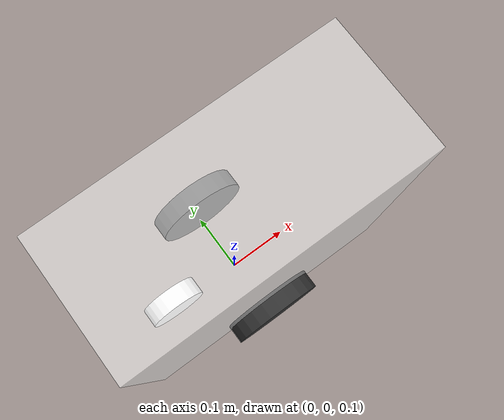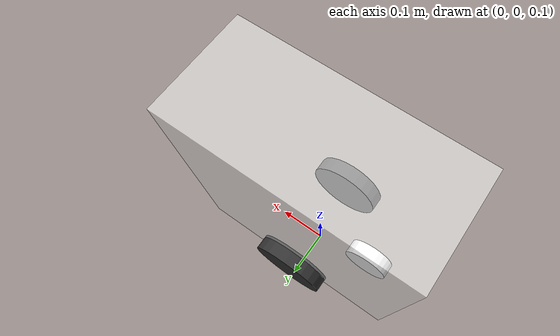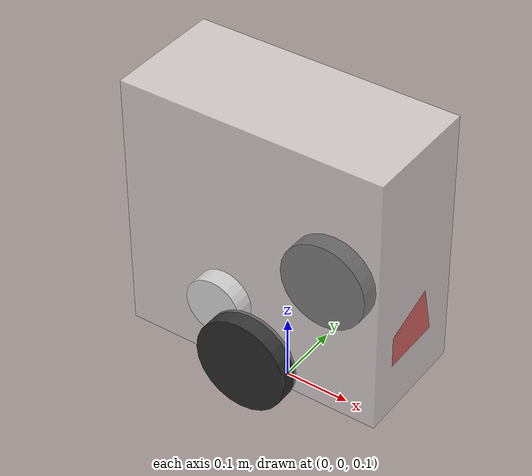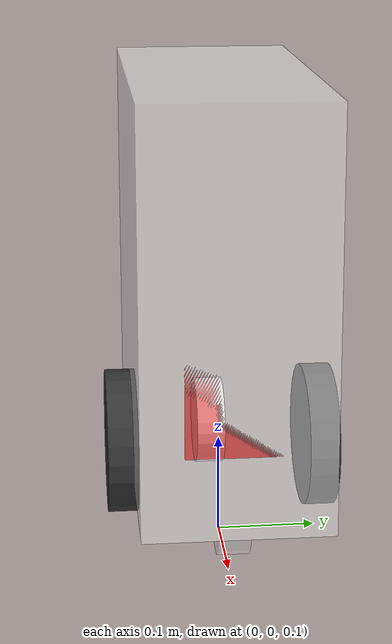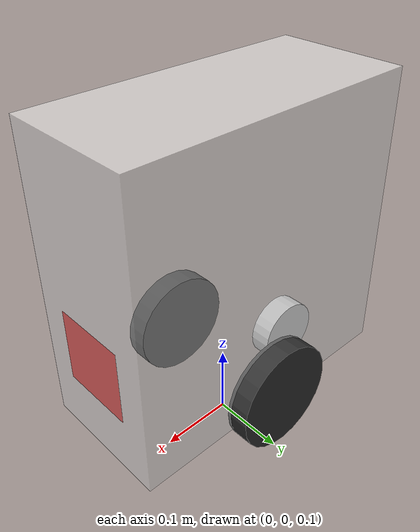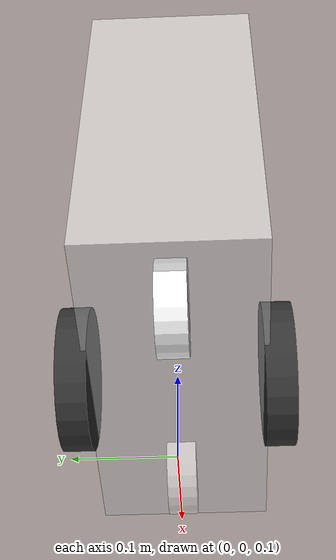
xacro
<?xml version="1.0"?>
<robot name="icart_mini" xmlns:xacro="http://ros.org/wiki/xacro">
  <!-- Constants for robot dimensions -->
  <xacro:property name="PI" value="3.1415926535897931"/>
  <xacro:property name="wheel_radius" value="0.0725"/>
  <xacro:property name="wheel_thickness" value="0.03"/>
  <xacro:property name="wheel_separation" value="0.2"/>
  <xacro:property name="base_height" value="0.25"/>
  <xacro:property name="wheel_height" value="0.075"/>

  <link name="base_footprint"/>

  <!-- Base Joint -->
  <joint name="base_joint" type="fixed">
    <origin xyz="0 0 0.126"/>
    <parent link="base_footprint" />
    <child link="base_link" />
  </joint>
  <!-- Base Link -->
  <link name="base_link">
    <visual>
      <origin xyz="0 0 ${base_height}" rpy="0 0 0"/>
      <geometry>
        <box size="0.4 0.18 0.4"/>
      </geometry>
      <material name="white">
        <color rgba="1.0 1.0 1.0 0.5"/>
      </material>
    </visual>
    <visual name="back_wheel">
      <origin xyz="-0.12 0.0 0.05" rpy="0 1.5707 1.5707"/>
      <geometry>
        <cylinder  length="0.03" radius="0.04625"/>
      </geometry>
      <material name="white">
        <color rgba="1.0 1.0 1.0 1.0"/>
      </material>
    </visual>
    <visual name="front_wheel">
      <origin xyz="0.12 0.0 0.05" rpy="0 1.5707 1.5707"/>
      <geometry>
        <cylinder  length="0.03" radius="0.04625"/>
      </geometry>
      <material name="white">
        <color rgba="1.0 1.0 1.0 0.5"/>
      </material>
    </visual>
  </link>

  <!-- Left Wheel -->
  <joint type="continuous" name="left_wheel_joint">
    <axis xyz="0 0 1"/>
    <parent link="base_link"/>
    <child link="left_wheel"/>
    <origin rpy="-${PI/2} 0 0" xyz = "0 ${wheel_separation/2} ${wheel_height}"/>
  </joint>
  <link name="left_wheel">
    <visual>
      <geometry>
        <cylinder length="${wheel_thickness}" radius="${wheel_radius}"/>
      </geometry>
      <material name="gray">
        <color rgba="0.2 0.2 0.2 1.0"/>
      </material>
    </visual>
  </link>

  <!-- Right Wheel -->
  <joint type="continuous" name="right_wheel_joint">
    <axis xyz="0 0 1"/>
    <parent link="base_link"/>
    <child link="right_wheel"/>
    <origin rpy="-${PI/2} 0 0" xyz="0 -${wheel_separation/2} ${wheel_height}" />
  </joint>
  <link name="right_wheel">
    <visual>
      <geometry>
        <cylinder length="${wheel_thickness}" radius="${wheel_radius}"/>
      </geometry>
      <material name="gray">
        <color rgba="0.2 0.2 0.2 1"/>
      </material>
    </visual>
  </link>

  <!-- LiDAR -->
  <joint name="scan_joint" type="fixed">
    <axis xyz="0 1 0"/>
    <origin xyz="0.15 0 0.18" rpy="0 0 0 "/>
    <parent link="base_link"/>
    <child link="laser"/>
  </joint>
  <link name="laser">
    <visual>
      <origin xyz="0 0 0" rpy="0 0 0 "/>
      <geometry>
        <box size="0.1 0.1 0.1"/>
      </geometry>
      <material name="red">
        <color rgba="1 0 0 0.5"/>
      </material>
    </visual>
  </link>

</robot>
